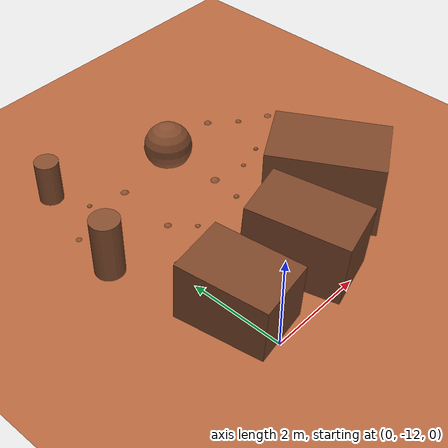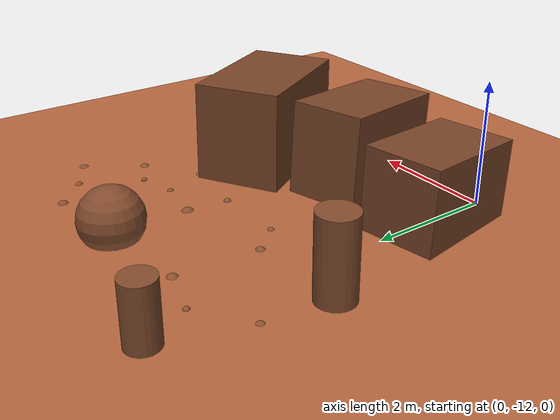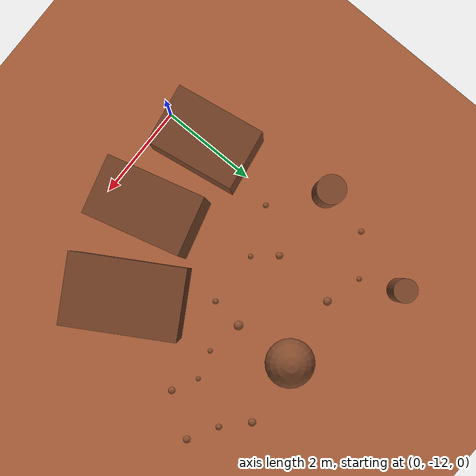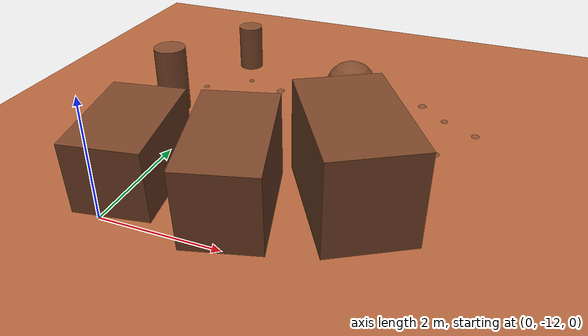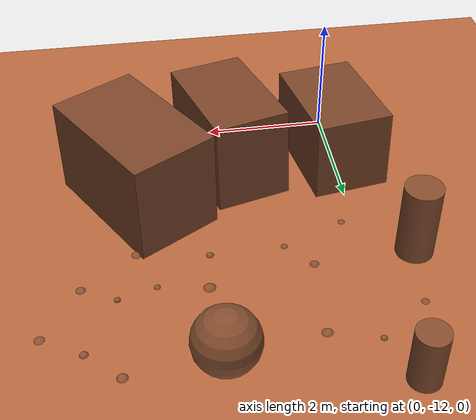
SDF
<sdf version="1.8">
 <world name="rover_world">
  <model name="ground_plane">
   <static>true</static>
   <link name="link">
    <collision name="collision">
     <geometry><plane><normal>0 0 1</normal><size>60 60</size></plane></geometry>
    </collision>
    <visual name="visual">
     <geometry><plane><normal>0 0 1</normal><size>60 60</size></plane></geometry>
     <material><ambient>0.71 0.40 0.24 1</ambient><diffuse>0.71 0.40 0.24 1</diffuse></material>
    </visual>
   </link>
  </model>
  <model name="rim_30">
   <static>true</static>
   <pose>-0.000 -11.041 0.568 0.000 0.051 4.876</pose>
   <link name="link">
    <collision name="collision"><geometry><box><size>1.849 1.260 1.398</size></box></geometry></collision>
    <visual name="visual">
     <geometry><box><size>1.849 1.260 1.398</size></box></geometry>
     <material><ambient>0.48 0.27 0.16 1</ambient><diffuse>0.48 0.27 0.16 1</diffuse></material>
    </visual>
   </link>
  </model>
  <model name="rim_31">
   <static>true</static>
   <pose>1.757 -11.096 0.637 0.000 0.074 4.975</pose>
   <link name="link">
    <collision name="collision"><geometry><box><size>2.036 1.231 1.589</size></box></geometry></collision>
    <visual name="visual">
     <geometry><box><size>2.036 1.231 1.589</size></box></geometry>
     <material><ambient>0.48 0.27 0.16 1</ambient><diffuse>0.48 0.27 0.16 1</diffuse></material>
    </visual>
   </link>
  </model>
  <model name="rim_32">
   <static>true</static>
   <pose>3.353 -10.320 0.644 0.000 0.020 5.250</pose>
   <link name="link">
    <collision name="collision"><geometry><box><size>2.292 1.430 1.912</size></box></geometry></collision>
    <visual name="visual">
     <geometry><box><size>2.292 1.430 1.912</size></box></geometry>
     <material><ambient>0.48 0.27 0.16 1</ambient><diffuse>0.48 0.27 0.16 1</diffuse></material>
    </visual>
   </link>
  </model>
  <model name="rock_c11">
   <static>true</static>
   <pose>-0.758 -8.546 0.631 0 0 0</pose>
   <link name="link">
    <collision name="collision">
     <geometry><cylinder><radius>0.297</radius><length>1.262</length></cylinder></geometry>
    </collision>
    <visual name="visual">
     <geometry><cylinder><radius>0.297</radius><length>1.262</length></cylinder></geometry>
     <material><ambient>0.52 0.30 0.18 1</ambient><diffuse>0.52 0.30 0.18 1</diffuse></material>
    </visual>
   </link>
  </model>
  <model name="rock_c16">
   <static>true</static>
   <pose>-0.182 -6.163 0.465 0 0 0</pose>
   <link name="link">
    <collision name="collision">
     <geometry><cylinder><radius>0.245</radius><length>0.930</length></cylinder></geometry>
    </collision>
    <visual name="visual">
     <geometry><cylinder><radius>0.245</radius><length>0.930</length></cylinder></geometry>
     <material><ambient>0.52 0.30 0.18 1</ambient><diffuse>0.52 0.30 0.18 1</diffuse></material>
    </visual>
   </link>
  </model>
  <model name="rock_s17">
   <static>true</static>
   <pose>2.365 -6.950 0.281 0 0 0</pose>
   <link name="link">
    <collision name="collision"><geometry><sphere><radius>0.510</radius></sphere></geometry></collision>
    <visual name="visual">
     <geometry><sphere><radius>0.510</radius></sphere></geometry>
     <material><ambient>0.52 0.30 0.18 1</ambient><diffuse>0.52 0.30 0.18 1</diffuse></material>
    </visual>
   </link>
  </model>
  <model name="bump_11">
   <static>true</static>
   <pose>4.296 -7.222 -0.042 0 0 0</pose>
   <link name="link">
    <collision name="collision"><geometry><sphere><radius>0.074</radius></sphere></geometry></collision>
    <visual name="visual">
     <geometry><sphere><radius>0.074</radius></sphere></geometry>
     <material><ambient>0.55 0.32 0.19 1</ambient><diffuse>0.55 0.32 0.19 1</diffuse></material>
    </visual>
   </link>
  </model>
  <model name="bump_17">
   <static>true</static>
   <pose>4.904 -7.567 -0.092 0 0 0</pose>
   <link name="link">
    <collision name="collision"><geometry><sphere><radius>0.115</radius></sphere></geometry></collision>
    <visual name="visual">
     <geometry><sphere><radius>0.115</radius></sphere></geometry>
     <material><ambient>0.55 0.32 0.19 1</ambient><diffuse>0.55 0.32 0.19 1</diffuse></material>
    </visual>
   </link>
  </model>
  <model name="bump_23">
   <static>true</static>
   <pose>0.917 -7.133 -0.073 0 0 0</pose>
   <link name="link">
    <collision name="collision"><geometry><sphere><radius>0.106</radius></sphere></geometry></collision>
    <visual name="visual">
     <geometry><sphere><radius>0.106</radius></sphere></geometry>
     <material><ambient>0.55 0.32 0.19 1</ambient><diffuse>0.55 0.32 0.19 1</diffuse></material>
    </visual>
   </link>
  </model>
  <model name="bump_25">
   <static>true</static>
   <pose>2.444 -8.222 -0.077 0 0 0</pose>
   <link name="link">
    <collision name="collision"><geometry><sphere><radius>0.117</radius></sphere></geometry></collision>
    <visual name="visual">
     <geometry><sphere><radius>0.117</radius></sphere></geometry>
     <material><ambient>0.55 0.32 0.19 1</ambient><diffuse>0.55 0.32 0.19 1</diffuse></material>
    </visual>
   </link>
  </model>
  <model name="bump_52">
   <static>true</static>
   <pose>4.327 -8.435 -0.062 0 0 0</pose>
   <link name="link">
    <collision name="collision"><geometry><sphere><radius>0.092</radius></sphere></geometry></collision>
    <visual name="visual">
     <geometry><sphere><radius>0.092</radius></sphere></geometry>
     <material><ambient>0.55 0.32 0.19 1</ambient><diffuse>0.55 0.32 0.19 1</diffuse></material>
    </visual>
   </link>
  </model>
  <model name="bump_95">
   <static>true</static>
   <pose>3.802 -8.166 -0.010 0 0 0</pose>
   <link name="link">
    <collision name="collision"><geometry><sphere><radius>0.050</radius></sphere></geometry></collision>
    <visual name="visual">
     <geometry><sphere><radius>0.050</radius></sphere></geometry>
     <material><ambient>0.55 0.32 0.19 1</ambient><diffuse>0.55 0.32 0.19 1</diffuse></material>
    </visual>
   </link>
  </model>
  <model name="bump_106">
   <static>true</static>
   <pose>-0.618 -7.501 -0.069 0 0 0</pose>
   <link name="link">
    <collision name="collision"><geometry><sphere><radius>0.087</radius></sphere></geometry></collision>
    <visual name="visual">
     <geometry><sphere><radius>0.087</radius></sphere></geometry>
     <material><ambient>0.55 0.32 0.19 1</ambient><diffuse>0.55 0.32 0.19 1</diffuse></material>
    </visual>
   </link>
  </model>
  <model name="bump_143">
   <static>true</static>
   <pose>2.360 -8.893 -0.030 0 0 0</pose>
   <link name="link">
    <collision name="collision"><geometry><sphere><radius>0.064</radius></sphere></geometry></collision>
    <visual name="visual">
     <geometry><sphere><radius>0.064</radius></sphere></geometry>
     <material><ambient>0.55 0.32 0.19 1</ambient><diffuse>0.55 0.32 0.19 1</diffuse></material>
    </visual>
   </link>
  </model>
  <model name="bump_150">
   <static>true</static>
   <pose>1.200 -8.921 -0.036 0 0 0</pose>
   <link name="link">
    <collision name="collision"><geometry><sphere><radius>0.061</radius></sphere></geometry></collision>
    <visual name="visual">
     <geometry><sphere><radius>0.061</radius></sphere></geometry>
     <material><ambient>0.55 0.32 0.19 1</ambient><diffuse>0.55 0.32 0.19 1</diffuse></material>
    </visual>
   </link>
  </model>
  <model name="bump_154">
   <static>true</static>
   <pose>3.792 -6.755 -0.064 0 0 0</pose>
   <link name="link">
    <collision name="collision"><geometry><sphere><radius>0.099</radius></sphere></geometry></collision>
    <visual name="visual">
     <geometry><sphere><radius>0.099</radius></sphere></geometry>
     <material><ambient>0.55 0.32 0.19 1</ambient><diffuse>0.55 0.32 0.19 1</diffuse></material>
    </visual>
   </link>
  </model>
  <model name="bump_168">
   <static>true</static>
   <pose>0.817 -8.478 -0.057 0 0 0</pose>
   <link name="link">
    <collision name="collision"><geometry><sphere><radius>0.088</radius></sphere></geometry></collision>
    <visual name="visual">
     <geometry><sphere><radius>0.088</radius></sphere></geometry>
     <material><ambient>0.55 0.32 0.19 1</ambient><diffuse>0.55 0.32 0.19 1</diffuse></material>
    </visual>
   </link>
  </model>
  <model name="bump_209">
   <static>true</static>
   <pose>3.209 -8.338 -0.028 0 0 0</pose>
   <link name="link">
    <collision name="collision"><geometry><sphere><radius>0.055</radius></sphere></geometry></collision>
    <visual name="visual">
     <geometry><sphere><radius>0.055</radius></sphere></geometry>
     <material><ambient>0.55 0.32 0.19 1</ambient><diffuse>0.55 0.32 0.19 1</diffuse></material>
    </visual>
   </link>
  </model>
  <model name="bump_234">
   <static>true</static>
   <pose>3.469 -9.060 -0.074 0 0 0</pose>
   <link name="link">
    <collision name="collision"><geometry><sphere><radius>0.105</radius></sphere></geometry></collision>
    <visual name="visual">
     <geometry><sphere><radius>0.105</radius></sphere></geometry>
     <material><ambient>0.55 0.32 0.19 1</ambient><diffuse>0.55 0.32 0.19 1</diffuse></material>
    </visual>
   </link>
  </model>
  <model name="bump_236">
   <static>true</static>
   <pose>0.199 -9.342 -0.053 0 0 0</pose>
   <link name="link">
    <collision name="collision"><geometry><sphere><radius>0.073</radius></sphere></geometry></collision>
    <visual name="visual">
     <geometry><sphere><radius>0.073</radius></sphere></geometry>
     <material><ambient>0.55 0.32 0.19 1</ambient><diffuse>0.55 0.32 0.19 1</diffuse></material>
    </visual>
   </link>
  </model>
  <model name="bump_240">
   <static>true</static>
   <pose>0.158 -6.921 -0.023 0 0 0</pose>
   <link name="link">
    <collision name="collision"><geometry><sphere><radius>0.054</radius></sphere></geometry></collision>
    <visual name="visual">
     <geometry><sphere><radius>0.054</radius></sphere></geometry>
     <material><ambient>0.55 0.32 0.19 1</ambient><diffuse>0.55 0.32 0.19 1</diffuse></material>
    </visual>
   </link>
  </model>
 </world>
</sdf>
